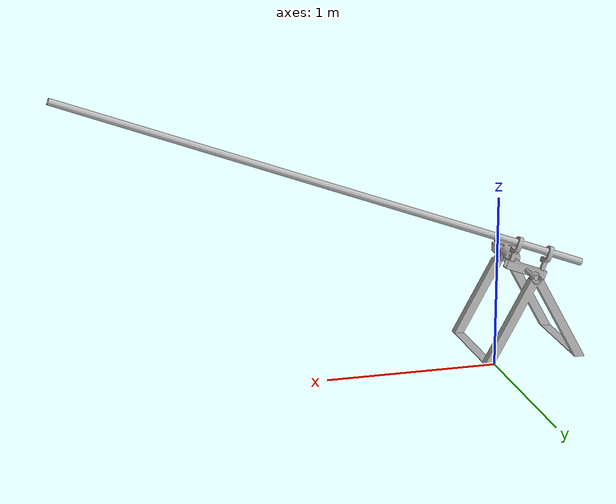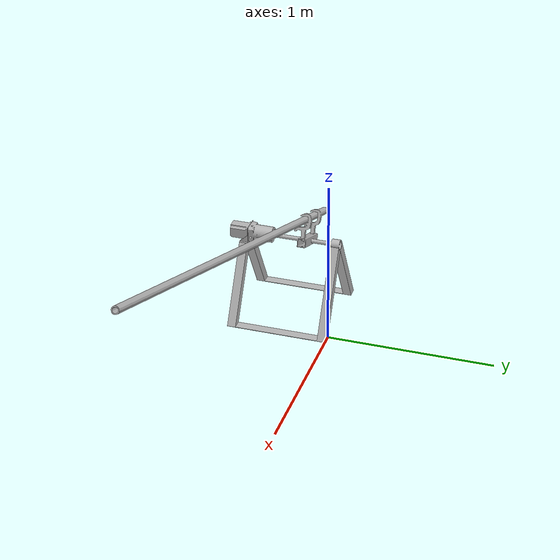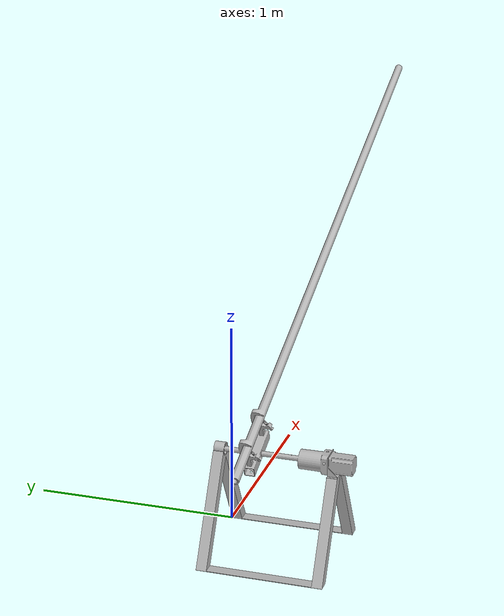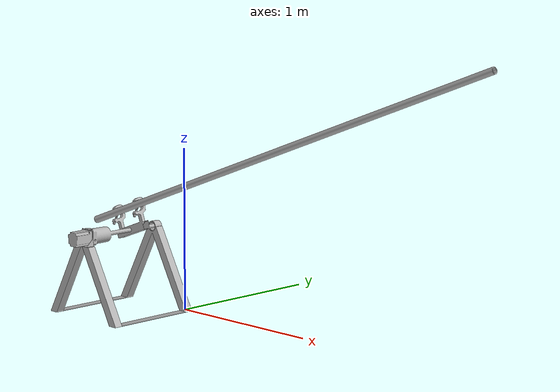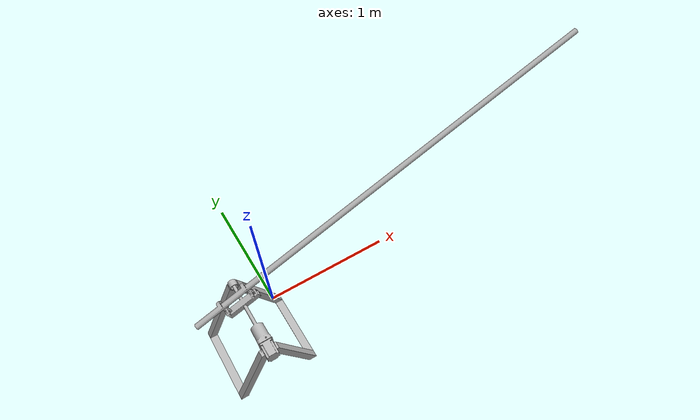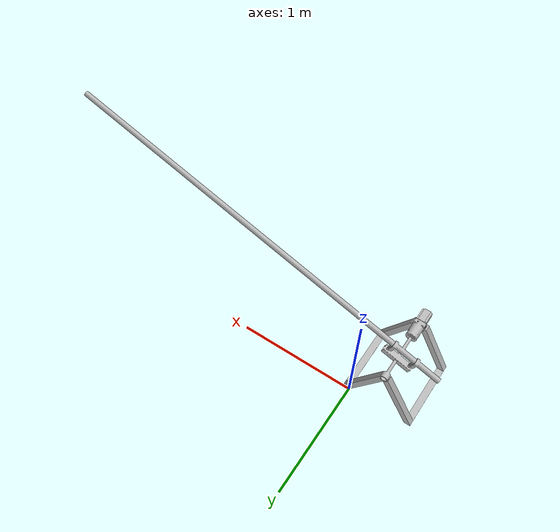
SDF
<sdf version='1.6'>
  <model name='auto_fisher'>
    <link name='base_link'>
      <pose frame=''>0 0 0 0 -0 0</pose>
      <inertial>
        <pose frame=''>-0.24689 -0.29979 0.19957 0 -0 0</pose>
        <mass>4.0427</mass>
        <inertia>
          <ixx>0.079204</ixx>
          <ixy>-8.9533e-17</ixy>
          <ixz>2.0728e-16</ixz>
          <iyy>0.078459</iyy>
          <iyz>-1.1378e-05</iyz>
          <izz>0.039337</izz>
        </inertia>
      </inertial>
      <collision name='base_link_collision'>
        <pose frame=''>0 0 0 0 -0 0</pose>
        <geometry>
          <mesh>
            <scale>1 1 1</scale>
            <uri>model://auto_fisher/meshes/base_link.STL</uri>
          </mesh>
        </geometry>
      </collision>
      <visual name='base_link_visual'>
        <pose frame=''>0 0 0 0 -0 0</pose>
        <geometry>
          <mesh>
            <scale>1 1 1</scale>
            <uri>model://auto_fisher/meshes/base_link.STL</uri>
          </mesh>
        </geometry>
      </visual>
    </link>
    <link name='shaft_pole'>
      <pose frame=''>-0.24689 0 0.49409 2.7827 0.059139 1.5486</pose>
      <inertial>
        <pose frame=''>-0.29644 0.31672 -0.021274 0 -0 0</pose>
        <mass>5.6829</mass>
        <inertia>
          <ixx>1.3375</ixx>
          <ixy>-1.2586e-07</ixy>
          <ixz>0.0014204</ixz>
          <iyy>0.025161</iyy>
          <iyz>-7.4757e-08</iyz>
          <izz>1.3586</izz>
        </inertia>
      </inertial>
      <collision name='shaft_pole_collision'>
        <pose frame=''>0 0 0 0 -0 0</pose>
        <geometry>
          <mesh>
            <scale>1 1 1</scale>
            <uri>model://auto_fisher/meshes/shaft_pole.STL</uri>
          </mesh>
        </geometry>
      </collision>
      <visual name='shaft_pole_visual'>
        <pose frame=''>0 0 0 0 -0 0</pose>
        <geometry>
          <mesh>
            <scale>1 1 1</scale>
            <uri>model://auto_fisher/meshes/shaft_pole.STL</uri>
          </mesh>
        </geometry>
      </visual>
    </link>
    <joint name='revolute' type='revolute'>
      <child>shaft_pole</child>
      <parent>base_link</parent>
      <axis>
        <xyz>2.7e-05 1 1e-06</xyz>
        <limit>
          <lower>0</lower>
          <upper>0</upper>
          <effort>0</effort>
          <velocity>0</velocity>
        </limit>
        <dynamics>
          <spring_reference>0</spring_reference>
          <spring_stiffness>0</spring_stiffness>
        </dynamics>
        <use_parent_model_frame>1</use_parent_model_frame>
      </axis>
    </joint>
  </model>
</sdf>
